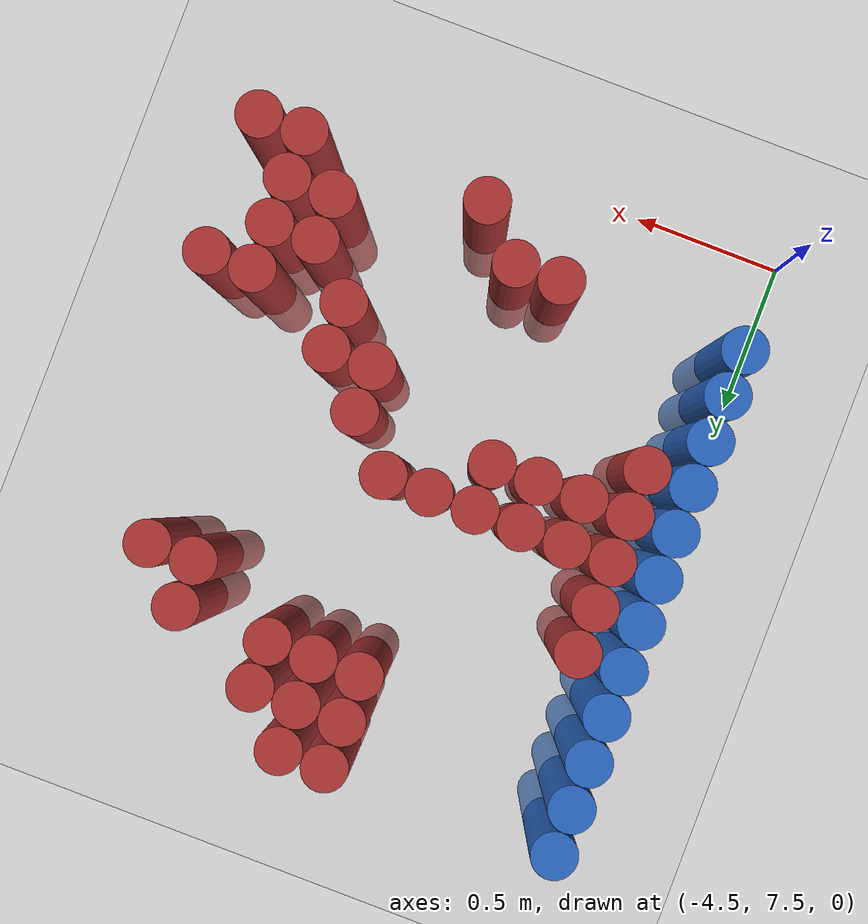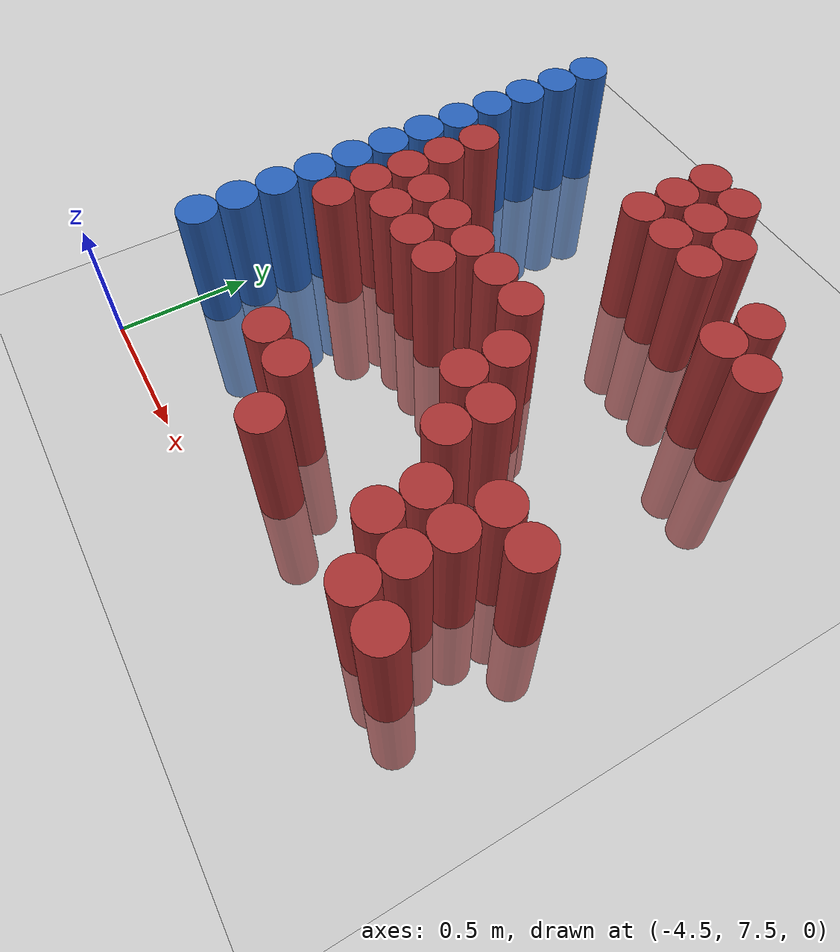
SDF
<sdf version="1.6">
 <world name="default">
  <model name="ground_plane">
   <static>1</static>
   <link name="link">
    <collision name="collision">
     <geometry><plane><normal>0 0 1</normal><size>100 100</size></plane></geometry>
     <surface><friction><ode><mu>100</mu><mu2>50</mu2></ode></friction></surface>
    </collision>
    <visual name="visual">
     <cast_shadows>0</cast_shadows>
     <geometry><plane><normal>0 0 1</normal><size>100 100</size></plane></geometry>
     <material>
      <script><uri>file://media/materials/scripts/gazebo.material</uri><name>Gazebo/Grey</name></script>
     </material>
    </visual>
   </link>
  </model>
  <model name="unit_cylinder_114">
   <static>1</static>
   <pose>-4.425000 7.875000 0.000000 0.000000 0.000000 0.000000</pose>
   <link name="link">
    <inertial>
     <mass>1</mass>
     <inertia><ixx>0.145833</ixx><ixy>0</ixy><ixz>0</ixz><iyy>0.145833</iyy><iyz>0</iyz><izz>0.125</izz></inertia>
    </inertial>
    <collision name="collision">
     <geometry><cylinder><radius>0.075000</radius><length>1</length></cylinder></geometry>
    </collision>
    <visual name="visual">
     <geometry><cylinder><radius>0.075000</radius><length>1</length></cylinder></geometry>
     <material>
      <ambient>0.152000 0.379000 0.720000 1</ambient>
      <diffuse>0.152000 0.379000 0.720000 1</diffuse>
     </material>
     <material>
      <script><name>Gazebo/Grey</name><uri>file://media/materials/scripts/gazebo.material</uri></script>
     </material>
    </visual>
   </link>
  </model>
  <model name="unit_cylinder_115">
   <static>1</static>
   <pose>-4.425000 8.025000 0.000000 0.000000 0.000000 0.000000</pose>
   <link name="link">
    <inertial>
     <mass>1</mass>
     <inertia><ixx>0.145833</ixx><ixy>0</ixy><ixz>0</ixz><iyy>0.145833</iyy><iyz>0</iyz><izz>0.125</izz></inertia>
    </inertial>
    <collision name="collision">
     <geometry><cylinder><radius>0.075000</radius><length>1</length></cylinder></geometry>
    </collision>
    <visual name="visual">
     <geometry><cylinder><radius>0.075000</radius><length>1</length></cylinder></geometry>
     <material>
      <ambient>0.152000 0.379000 0.720000 1</ambient>
      <diffuse>0.152000 0.379000 0.720000 1</diffuse>
     </material>
     <material>
      <script><name>Gazebo/Grey</name><uri>file://media/materials/scripts/gazebo.material</uri></script>
     </material>
    </visual>
   </link>
  </model>
  <model name="unit_cylinder_116">
   <static>1</static>
   <pose>-4.425000 8.175000 0.000000 0.000000 0.000000 0.000000</pose>
   <link name="link">
    <inertial>
     <mass>1</mass>
     <inertia><ixx>0.145833</ixx><ixy>0</ixy><ixz>0</ixz><iyy>0.145833</iyy><iyz>0</iyz><izz>0.125</izz></inertia>
    </inertial>
    <collision name="collision">
     <geometry><cylinder><radius>0.075000</radius><length>1</length></cylinder></geometry>
    </collision>
    <visual name="visual">
     <geometry><cylinder><radius>0.075000</radius><length>1</length></cylinder></geometry>
     <material>
      <ambient>0.152000 0.379000 0.720000 1</ambient>
      <diffuse>0.152000 0.379000 0.720000 1</diffuse>
     </material>
     <material>
      <script><name>Gazebo/Grey</name><uri>file://media/materials/scripts/gazebo.material</uri></script>
     </material>
    </visual>
   </link>
  </model>
  <model name="unit_cylinder_117">
   <static>1</static>
   <pose>-4.425000 8.325000 0.000000 0.000000 0.000000 0.000000</pose>
   <link name="link">
    <inertial>
     <mass>1</mass>
     <inertia><ixx>0.145833</ixx><ixy>0</ixy><ixz>0</ixz><iyy>0.145833</iyy><iyz>0</iyz><izz>0.125</izz></inertia>
    </inertial>
    <collision name="collision">
     <geometry><cylinder><radius>0.075000</radius><length>1</length></cylinder></geometry>
    </collision>
    <visual name="visual">
     <geometry><cylinder><radius>0.075000</radius><length>1</length></cylinder></geometry>
     <material>
      <ambient>0.152000 0.379000 0.720000 1</ambient>
      <diffuse>0.152000 0.379000 0.720000 1</diffuse>
     </material>
     <material>
      <script><name>Gazebo/Grey</name><uri>file://media/materials/scripts/gazebo.material</uri></script>
     </material>
    </visual>
   </link>
  </model>
  <model name="unit_cylinder_118">
   <static>1</static>
   <pose>-4.425000 8.475000 0.000000 0.000000 0.000000 0.000000</pose>
   <link name="link">
    <inertial>
     <mass>1</mass>
     <inertia><ixx>0.145833</ixx><ixy>0</ixy><ixz>0</ixz><iyy>0.145833</iyy><iyz>0</iyz><izz>0.125</izz></inertia>
    </inertial>
    <collision name="collision">
     <geometry><cylinder><radius>0.075000</radius><length>1</length></cylinder></geometry>
    </collision>
    <visual name="visual">
     <geometry><cylinder><radius>0.075000</radius><length>1</length></cylinder></geometry>
     <material>
      <ambient>0.152000 0.379000 0.720000 1</ambient>
      <diffuse>0.152000 0.379000 0.720000 1</diffuse>
     </material>
     <material>
      <script><name>Gazebo/Grey</name><uri>file://media/materials/scripts/gazebo.material</uri></script>
     </material>
    </visual>
   </link>
  </model>
  <model name="unit_cylinder_119">
   <static>1</static>
   <pose>-4.425000 8.625000 0.000000 0.000000 0.000000 0.000000</pose>
   <link name="link">
    <inertial>
     <mass>1</mass>
     <inertia><ixx>0.145833</ixx><ixy>0</ixy><ixz>0</ixz><iyy>0.145833</iyy><iyz>0</iyz><izz>0.125</izz></inertia>
    </inertial>
    <collision name="collision">
     <geometry><cylinder><radius>0.075000</radius><length>1</length></cylinder></geometry>
    </collision>
    <visual name="visual">
     <geometry><cylinder><radius>0.075000</radius><length>1</length></cylinder></geometry>
     <material>
      <ambient>0.152000 0.379000 0.720000 1</ambient>
      <diffuse>0.152000 0.379000 0.720000 1</diffuse>
     </material>
     <material>
      <script><name>Gazebo/Grey</name><uri>file://media/materials/scripts/gazebo.material</uri></script>
     </material>
    </visual>
   </link>
  </model>
  <model name="unit_cylinder_120">
   <static>1</static>
   <pose>-4.425000 8.775000 0.000000 0.000000 0.000000 0.000000</pose>
   <link name="link">
    <inertial>
     <mass>1</mass>
     <inertia><ixx>0.145833</ixx><ixy>0</ixy><ixz>0</ixz><iyy>0.145833</iyy><iyz>0</iyz><izz>0.125</izz></inertia>
    </inertial>
    <collision name="collision">
     <geometry><cylinder><radius>0.075000</radius><length>1</length></cylinder></geometry>
    </collision>
    <visual name="visual">
     <geometry><cylinder><radius>0.075000</radius><length>1</length></cylinder></geometry>
     <material>
      <ambient>0.152000 0.379000 0.720000 1</ambient>
      <diffuse>0.152000 0.379000 0.720000 1</diffuse>
     </material>
     <material>
      <script><name>Gazebo/Grey</name><uri>file://media/materials/scripts/gazebo.material</uri></script>
     </material>
    </visual>
   </link>
  </model>
  <model name="unit_cylinder_121">
   <static>1</static>
   <pose>-4.425000 8.925000 0.000000 0.000000 0.000000 0.000000</pose>
   <link name="link">
    <inertial>
     <mass>1</mass>
     <inertia><ixx>0.145833</ixx><ixy>0</ixy><ixz>0</ixz><iyy>0.145833</iyy><iyz>0</iyz><izz>0.125</izz></inertia>
    </inertial>
    <collision name="collision">
     <geometry><cylinder><radius>0.075000</radius><length>1</length></cylinder></geometry>
    </collision>
    <visual name="visual">
     <geometry><cylinder><radius>0.075000</radius><length>1</length></cylinder></geometry>
     <material>
      <ambient>0.152000 0.379000 0.720000 1</ambient>
      <diffuse>0.152000 0.379000 0.720000 1</diffuse>
     </material>
     <material>
      <script><name>Gazebo/Grey</name><uri>file://media/materials/scripts/gazebo.material</uri></script>
     </material>
    </visual>
   </link>
  </model>
  <model name="unit_cylinder_122">
   <static>1</static>
   <pose>-4.425000 9.075000 0.000000 0.000000 0.000000 0.000000</pose>
   <link name="link">
    <inertial>
     <mass>1</mass>
     <inertia><ixx>0.145833</ixx><ixy>0</ixy><ixz>0</ixz><iyy>0.145833</iyy><iyz>0</iyz><izz>0.125</izz></inertia>
    </inertial>
    <collision name="collision">
     <geometry><cylinder><radius>0.075000</radius><length>1</length></cylinder></geometry>
    </collision>
    <visual name="visual">
     <geometry><cylinder><radius>0.075000</radius><length>1</length></cylinder></geometry>
     <material>
      <ambient>0.152000 0.379000 0.720000 1</ambient>
      <diffuse>0.152000 0.379000 0.720000 1</diffuse>
     </material>
     <material>
      <script><name>Gazebo/Grey</name><uri>file://media/materials/scripts/gazebo.material</uri></script>
     </material>
    </visual>
   </link>
  </model>
  <model name="unit_cylinder_123">
   <static>1</static>
   <pose>-4.425000 9.225000 0.000000 0.000000 0.000000 0.000000</pose>
   <link name="link">
    <inertial>
     <mass>1</mass>
     <inertia><ixx>0.145833</ixx><ixy>0</ixy><ixz>0</ixz><iyy>0.145833</iyy><iyz>0</iyz><izz>0.125</izz></inertia>
    </inertial>
    <collision name="collision">
     <geometry><cylinder><radius>0.075000</radius><length>1</length></cylinder></geometry>
    </collision>
    <visual name="visual">
     <geometry><cylinder><radius>0.075000</radius><length>1</length></cylinder></geometry>
     <material>
      <ambient>0.152000 0.379000 0.720000 1</ambient>
      <diffuse>0.152000 0.379000 0.720000 1</diffuse>
     </material>
     <material>
      <script><name>Gazebo/Grey</name><uri>file://media/materials/scripts/gazebo.material</uri></script>
     </material>
    </visual>
   </link>
  </model>
  <model name="unit_cylinder_124">
   <static>1</static>
   <pose>-4.425000 9.375000 0.000000 0.000000 0.000000 0.000000</pose>
   <link name="link">
    <inertial>
     <mass>1</mass>
     <inertia><ixx>0.145833</ixx><ixy>0</ixy><ixz>0</ixz><iyy>0.145833</iyy><iyz>0</iyz><izz>0.125</izz></inertia>
    </inertial>
    <collision name="collision">
     <geometry><cylinder><radius>0.075000</radius><length>1</length></cylinder></geometry>
    </collision>
    <visual name="visual">
     <geometry><cylinder><radius>0.075000</radius><length>1</length></cylinder></geometry>
     <material>
      <ambient>0.152000 0.379000 0.720000 1</ambient>
      <diffuse>0.152000 0.379000 0.720000 1</diffuse>
     </material>
     <material>
      <script><name>Gazebo/Grey</name><uri>file://media/materials/scripts/gazebo.material</uri></script>
     </material>
    </visual>
   </link>
  </model>
  <model name="unit_cylinder_125">
   <static>1</static>
   <pose>-4.425000 9.525000 0.000000 0.000000 0.000000 0.000000</pose>
   <link name="link">
    <inertial>
     <mass>1</mass>
     <inertia><ixx>0.145833</ixx><ixy>0</ixy><ixz>0</ixz><iyy>0.145833</iyy><iyz>0</iyz><izz>0.125</izz></inertia>
    </inertial>
    <collision name="collision">
     <geometry><cylinder><radius>0.075000</radius><length>1</length></cylinder></geometry>
    </collision>
    <visual name="visual">
     <geometry><cylinder><radius>0.075000</radius><length>1</length></cylinder></geometry>
     <material>
      <ambient>0.152000 0.379000 0.720000 1</ambient>
      <diffuse>0.152000 0.379000 0.720000 1</diffuse>
     </material>
     <material>
      <script><name>Gazebo/Grey</name><uri>file://media/materials/scripts/gazebo.material</uri></script>
     </material>
    </visual>
   </link>
  </model>
  <model name="unit_cylinder_137">
   <static>1</static>
   <pose>-4.275000 8.325000 0.000000 0.000000 0.000000 0.000000</pose>
   <link name="link">
    <inertial>
     <mass>1</mass>
     <inertia><ixx>0.145833</ixx><ixy>0</ixy><ixz>0</ixz><iyy>0.145833</iyy><iyz>0</iyz><izz>0.125</izz></inertia>
    </inertial>
    <collision name="collision">
     <geometry><cylinder><radius>0.075000</radius><length>1</length></cylinder></geometry>
    </collision>
    <visual name="visual">
     <geometry><cylinder><radius>0.075000</radius><length>1</length></cylinder></geometry>
     <material>
      <ambient>0.648000 0.192000 0.192000 1</ambient>
      <diffuse>0.648000 0.192000 0.192000 1</diffuse>
     </material>
     <material>
      <script><name>Gazebo/Grey</name><uri>file://media/materials/scripts/gazebo.material</uri></script>
     </material>
    </visual>
   </link>
  </model>
  <model name="unit_cylinder_138">
   <static>1</static>
   <pose>-4.275000 8.475000 0.000000 0.000000 0.000000 0.000000</pose>
   <link name="link">
    <inertial>
     <mass>1</mass>
     <inertia><ixx>0.145833</ixx><ixy>0</ixy><ixz>0</ixz><iyy>0.145833</iyy><iyz>0</iyz><izz>0.125</izz></inertia>
    </inertial>
    <collision name="collision">
     <geometry><cylinder><radius>0.075000</radius><length>1</length></cylinder></geometry>
    </collision>
    <visual name="visual">
     <geometry><cylinder><radius>0.075000</radius><length>1</length></cylinder></geometry>
     <material>
      <ambient>0.648000 0.192000 0.192000 1</ambient>
      <diffuse>0.648000 0.192000 0.192000 1</diffuse>
     </material>
     <material>
      <script><name>Gazebo/Grey</name><uri>file://media/materials/scripts/gazebo.material</uri></script>
     </material>
    </visual>
   </link>
  </model>
  <model name="unit_cylinder_139">
   <static>1</static>
   <pose>-4.275000 8.625000 0.000000 0.000000 0.000000 0.000000</pose>
   <link name="link">
    <inertial>
     <mass>1</mass>
     <inertia><ixx>0.145833</ixx><ixy>0</ixy><ixz>0</ixz><iyy>0.145833</iyy><iyz>0</iyz><izz>0.125</izz></inertia>
    </inertial>
    <collision name="collision">
     <geometry><cylinder><radius>0.075000</radius><length>1</length></cylinder></geometry>
    </collision>
    <visual name="visual">
     <geometry><cylinder><radius>0.075000</radius><length>1</length></cylinder></geometry>
     <material>
      <ambient>0.648000 0.192000 0.192000 1</ambient>
      <diffuse>0.648000 0.192000 0.192000 1</diffuse>
     </material>
     <material>
      <script><name>Gazebo/Grey</name><uri>file://media/materials/scripts/gazebo.material</uri></script>
     </material>
    </visual>
   </link>
  </model>
  <model name="unit_cylinder_140">
   <static>1</static>
   <pose>-4.275000 8.775000 0.000000 0.000000 0.000000 0.000000</pose>
   <link name="link">
    <inertial>
     <mass>1</mass>
     <inertia><ixx>0.145833</ixx><ixy>0</ixy><ixz>0</ixz><iyy>0.145833</iyy><iyz>0</iyz><izz>0.125</izz></inertia>
    </inertial>
    <collision name="collision">
     <geometry><cylinder><radius>0.075000</radius><length>1</length></cylinder></geometry>
    </collision>
    <visual name="visual">
     <geometry><cylinder><radius>0.075000</radius><length>1</length></cylinder></geometry>
     <material>
      <ambient>0.648000 0.192000 0.192000 1</ambient>
      <diffuse>0.648000 0.192000 0.192000 1</diffuse>
     </material>
     <material>
      <script><name>Gazebo/Grey</name><uri>file://media/materials/scripts/gazebo.material</uri></script>
     </material>
    </visual>
   </link>
  </model>
  <model name="unit_cylinder_141">
   <static>1</static>
   <pose>-4.275000 8.925000 0.000000 0.000000 0.000000 0.000000</pose>
   <link name="link">
    <inertial>
     <mass>1</mass>
     <inertia><ixx>0.145833</ixx><ixy>0</ixy><ixz>0</ixz><iyy>0.145833</iyy><iyz>0</iyz><izz>0.125</izz></inertia>
    </inertial>
    <collision name="collision">
     <geometry><cylinder><radius>0.075000</radius><length>1</length></cylinder></geometry>
    </collision>
    <visual name="visual">
     <geometry><cylinder><radius>0.075000</radius><length>1</length></cylinder></geometry>
     <material>
      <ambient>0.648000 0.192000 0.192000 1</ambient>
      <diffuse>0.648000 0.192000 0.192000 1</diffuse>
     </material>
     <material>
      <script><name>Gazebo/Grey</name><uri>file://media/materials/scripts/gazebo.material</uri></script>
     </material>
    </visual>
   </link>
  </model>
  <model name="unit_cylinder_145">
   <static>1</static>
   <pose>-4.125000 8.475000 0.000000 0.000000 0.000000 0.000000</pose>
   <link name="link">
    <inertial>
     <mass>1</mass>
     <inertia><ixx>0.145833</ixx><ixy>0</ixy><ixz>0</ixz><iyy>0.145833</iyy><iyz>0</iyz><izz>0.125</izz></inertia>
    </inertial>
    <collision name="collision">
     <geometry><cylinder><radius>0.075000</radius><length>1</length></cylinder></geometry>
    </collision>
    <visual name="visual">
     <geometry><cylinder><radius>0.075000</radius><length>1</length></cylinder></geometry>
     <material>
      <ambient>0.648000 0.192000 0.192000 1</ambient>
      <diffuse>0.648000 0.192000 0.192000 1</diffuse>
     </material>
     <material>
      <script><name>Gazebo/Grey</name><uri>file://media/materials/scripts/gazebo.material</uri></script>
     </material>
    </visual>
   </link>
  </model>
  <model name="unit_cylinder_146">
   <static>1</static>
   <pose>-4.125000 8.625000 0.000000 0.000000 0.000000 0.000000</pose>
   <link name="link">
    <inertial>
     <mass>1</mass>
     <inertia><ixx>0.145833</ixx><ixy>0</ixy><ixz>0</ixz><iyy>0.145833</iyy><iyz>0</iyz><izz>0.125</izz></inertia>
    </inertial>
    <collision name="collision">
     <geometry><cylinder><radius>0.075000</radius><length>1</length></cylinder></geometry>
    </collision>
    <visual name="visual">
     <geometry><cylinder><radius>0.075000</radius><length>1</length></cylinder></geometry>
     <material>
      <ambient>0.648000 0.192000 0.192000 1</ambient>
      <diffuse>0.648000 0.192000 0.192000 1</diffuse>
     </material>
     <material>
      <script><name>Gazebo/Grey</name><uri>file://media/materials/scripts/gazebo.material</uri></script>
     </material>
    </visual>
   </link>
  </model>
  <model name="unit_cylinder_150">
   <static>1</static>
   <pose>-3.975000 8.475000 0.000000 0.000000 0.000000 0.000000</pose>
   <link name="link">
    <inertial>
     <mass>1</mass>
     <inertia><ixx>0.145833</ixx><ixy>0</ixy><ixz>0</ixz><iyy>0.145833</iyy><iyz>0</iyz><izz>0.125</izz></inertia>
    </inertial>
    <collision name="collision">
     <geometry><cylinder><radius>0.075000</radius><length>1</length></cylinder></geometry>
    </collision>
    <visual name="visual">
     <geometry><cylinder><radius>0.075000</radius><length>1</length></cylinder></geometry>
     <material>
      <ambient>0.648000 0.192000 0.192000 1</ambient>
      <diffuse>0.648000 0.192000 0.192000 1</diffuse>
     </material>
     <material>
      <script><name>Gazebo/Grey</name><uri>file://media/materials/scripts/gazebo.material</uri></script>
     </material>
    </visual>
   </link>
  </model>
  <model name="unit_cylinder_151">
   <static>1</static>
   <pose>-3.975000 8.625000 0.000000 0.000000 0.000000 0.000000</pose>
   <link name="link">
    <inertial>
     <mass>1</mass>
     <inertia><ixx>0.145833</ixx><ixy>0</ixy><ixz>0</ixz><iyy>0.145833</iyy><iyz>0</iyz><izz>0.125</izz></inertia>
    </inertial>
    <collision name="collision">
     <geometry><cylinder><radius>0.075000</radius><length>1</length></cylinder></geometry>
    </collision>
    <visual name="visual">
     <geometry><cylinder><radius>0.075000</radius><length>1</length></cylinder></geometry>
     <material>
      <ambient>0.648000 0.192000 0.192000 1</ambient>
      <diffuse>0.648000 0.192000 0.192000 1</diffuse>
     </material>
     <material>
      <script><name>Gazebo/Grey</name><uri>file://media/materials/scripts/gazebo.material</uri></script>
     </material>
    </visual>
   </link>
  </model>
  <model name="unit_cylinder_160">
   <static>1</static>
   <pose>-3.825000 7.875000 0.000000 0.000000 0.000000 0.000000</pose>
   <link name="link">
    <inertial>
     <mass>1</mass>
     <inertia><ixx>0.145833</ixx><ixy>0</ixy><ixz>0</ixz><iyy>0.145833</iyy><iyz>0</iyz><izz>0.125</izz></inertia>
    </inertial>
    <collision name="collision">
     <geometry><cylinder><radius>0.075000</radius><length>1</length></cylinder></geometry>
    </collision>
    <visual name="visual">
     <geometry><cylinder><radius>0.075000</radius><length>1</length></cylinder></geometry>
     <material>
      <ambient>0.648000 0.192000 0.192000 1</ambient>
      <diffuse>0.648000 0.192000 0.192000 1</diffuse>
     </material>
     <material>
      <script><name>Gazebo/Grey</name><uri>file://media/materials/scripts/gazebo.material</uri></script>
     </material>
    </visual>
   </link>
  </model>
  <model name="unit_cylinder_161">
   <static>1</static>
   <pose>-3.825000 8.475000 0.000000 0.000000 0.000000 0.000000</pose>
   <link name="link">
    <inertial>
     <mass>1</mass>
     <inertia><ixx>0.145833</ixx><ixy>0</ixy><ixz>0</ixz><iyy>0.145833</iyy><iyz>0</iyz><izz>0.125</izz></inertia>
    </inertial>
    <collision name="collision">
     <geometry><cylinder><radius>0.075000</radius><length>1</length></cylinder></geometry>
    </collision>
    <visual name="visual">
     <geometry><cylinder><radius>0.075000</radius><length>1</length></cylinder></geometry>
     <material>
      <ambient>0.648000 0.192000 0.192000 1</ambient>
      <diffuse>0.648000 0.192000 0.192000 1</diffuse>
     </material>
     <material>
      <script><name>Gazebo/Grey</name><uri>file://media/materials/scripts/gazebo.material</uri></script>
     </material>
    </visual>
   </link>
  </model>
  <model name="unit_cylinder_162">
   <static>1</static>
   <pose>-3.825000 8.625000 0.000000 0.000000 0.000000 0.000000</pose>
   <link name="link">
    <inertial>
     <mass>1</mass>
     <inertia><ixx>0.145833</ixx><ixy>0</ixy><ixz>0</ixz><iyy>0.145833</iyy><iyz>0</iyz><izz>0.125</izz></inertia>
    </inertial>
    <collision name="collision">
     <geometry><cylinder><radius>0.075000</radius><length>1</length></cylinder></geometry>
    </collision>
    <visual name="visual">
     <geometry><cylinder><radius>0.075000</radius><length>1</length></cylinder></geometry>
     <material>
      <ambient>0.648000 0.192000 0.192000 1</ambient>
      <diffuse>0.648000 0.192000 0.192000 1</diffuse>
     </material>
     <material>
      <script><name>Gazebo/Grey</name><uri>file://media/materials/scripts/gazebo.material</uri></script>
     </material>
    </visual>
   </link>
  </model>
  <model name="unit_cylinder_170">
   <static>1</static>
   <pose>-3.675000 7.875000 0.000000 0.000000 0.000000 0.000000</pose>
   <link name="link">
    <inertial>
     <mass>1</mass>
     <inertia><ixx>0.145833</ixx><ixy>0</ixy><ixz>0</ixz><iyy>0.145833</iyy><iyz>0</iyz><izz>0.125</izz></inertia>
    </inertial>
    <collision name="collision">
     <geometry><cylinder><radius>0.075000</radius><length>1</length></cylinder></geometry>
    </collision>
    <visual name="visual">
     <geometry><cylinder><radius>0.075000</radius><length>1</length></cylinder></geometry>
     <material>
      <ambient>0.648000 0.192000 0.192000 1</ambient>
      <diffuse>0.648000 0.192000 0.192000 1</diffuse>
     </material>
     <material>
      <script><name>Gazebo/Grey</name><uri>file://media/materials/scripts/gazebo.material</uri></script>
     </material>
    </visual>
   </link>
  </model>
  <model name="unit_cylinder_171">
   <static>1</static>
   <pose>-3.675000 8.625000 0.000000 0.000000 0.000000 0.000000</pose>
   <link name="link">
    <inertial>
     <mass>1</mass>
     <inertia><ixx>0.145833</ixx><ixy>0</ixy><ixz>0</ixz><iyy>0.145833</iyy><iyz>0</iyz><izz>0.125</izz></inertia>
    </inertial>
    <collision name="collision">
     <geometry><cylinder><radius>0.075000</radius><length>1</length></cylinder></geometry>
    </collision>
    <visual name="visual">
     <geometry><cylinder><radius>0.075000</radius><length>1</length></cylinder></geometry>
     <material>
      <ambient>0.648000 0.192000 0.192000 1</ambient>
      <diffuse>0.648000 0.192000 0.192000 1</diffuse>
     </material>
     <material>
      <script><name>Gazebo/Grey</name><uri>file://media/materials/scripts/gazebo.material</uri></script>
     </material>
    </visual>
   </link>
  </model>
  <model name="unit_cylinder_172">
   <static>1</static>
   <pose>-3.675000 9.225000 0.000000 0.000000 0.000000 0.000000</pose>
   <link name="link">
    <inertial>
     <mass>1</mass>
     <inertia><ixx>0.145833</ixx><ixy>0</ixy><ixz>0</ixz><iyy>0.145833</iyy><iyz>0</iyz><izz>0.125</izz></inertia>
    </inertial>
    <collision name="collision">
     <geometry><cylinder><radius>0.075000</radius><length>1</length></cylinder></geometry>
    </collision>
    <visual name="visual">
     <geometry><cylinder><radius>0.075000</radius><length>1</length></cylinder></geometry>
     <material>
      <ambient>0.648000 0.192000 0.192000 1</ambient>
      <diffuse>0.648000 0.192000 0.192000 1</diffuse>
     </material>
     <material>
      <script><name>Gazebo/Grey</name><uri>file://media/materials/scripts/gazebo.material</uri></script>
     </material>
    </visual>
   </link>
  </model>
  <model name="unit_cylinder_173">
   <static>1</static>
   <pose>-3.675000 9.375000 0.000000 0.000000 0.000000 0.000000</pose>
   <link name="link">
    <inertial>
     <mass>1</mass>
     <inertia><ixx>0.145833</ixx><ixy>0</ixy><ixz>0</ixz><iyy>0.145833</iyy><iyz>0</iyz><izz>0.125</izz></inertia>
    </inertial>
    <collision name="collision">
     <geometry><cylinder><radius>0.075000</radius><length>1</length></cylinder></geometry>
    </collision>
    <visual name="visual">
     <geometry><cylinder><radius>0.075000</radius><length>1</length></cylinder></geometry>
     <material>
      <ambient>0.648000 0.192000 0.192000 1</ambient>
      <diffuse>0.648000 0.192000 0.192000 1</diffuse>
     </material>
     <material>
      <script><name>Gazebo/Grey</name><uri>file://media/materials/scripts/gazebo.material</uri></script>
     </material>
    </visual>
   </link>
  </model>
  <model name="unit_cylinder_174">
   <static>1</static>
   <pose>-3.675000 9.525000 0.000000 0.000000 0.000000 0.000000</pose>
   <link name="link">
    <inertial>
     <mass>1</mass>
     <inertia><ixx>0.145833</ixx><ixy>0</ixy><ixz>0</ixz><iyy>0.145833</iyy><iyz>0</iyz><izz>0.125</izz></inertia>
    </inertial>
    <collision name="collision">
     <geometry><cylinder><radius>0.075000</radius><length>1</length></cylinder></geometry>
    </collision>
    <visual name="visual">
     <geometry><cylinder><radius>0.075000</radius><length>1</length></cylinder></geometry>
     <material>
      <ambient>0.648000 0.192000 0.192000 1</ambient>
      <diffuse>0.648000 0.192000 0.192000 1</diffuse>
     </material>
     <material>
      <script><name>Gazebo/Grey</name><uri>file://media/materials/scripts/gazebo.material</uri></script>
     </material>
    </visual>
   </link>
  </model>
  <model name="unit_cylinder_181">
   <static>1</static>
   <pose>-3.525000 7.725000 0.000000 0.000000 0.000000 0.000000</pose>
   <link name="link">
    <inertial>
     <mass>1</mass>
     <inertia><ixx>0.145833</ixx><ixy>0</ixy><ixz>0</ixz><iyy>0.145833</iyy><iyz>0</iyz><izz>0.125</izz></inertia>
    </inertial>
    <collision name="collision">
     <geometry><cylinder><radius>0.075000</radius><length>1</length></cylinder></geometry>
    </collision>
    <visual name="visual">
     <geometry><cylinder><radius>0.075000</radius><length>1</length></cylinder></geometry>
     <material>
      <ambient>0.648000 0.192000 0.192000 1</ambient>
      <diffuse>0.648000 0.192000 0.192000 1</diffuse>
     </material>
     <material>
      <script><name>Gazebo/Grey</name><uri>file://media/materials/scripts/gazebo.material</uri></script>
     </material>
    </visual>
   </link>
  </model>
  <model name="unit_cylinder_182">
   <static>1</static>
   <pose>-3.525000 8.625000 0.000000 0.000000 0.000000 0.000000</pose>
   <link name="link">
    <inertial>
     <mass>1</mass>
     <inertia><ixx>0.145833</ixx><ixy>0</ixy><ixz>0</ixz><iyy>0.145833</iyy><iyz>0</iyz><izz>0.125</izz></inertia>
    </inertial>
    <collision name="collision">
     <geometry><cylinder><radius>0.075000</radius><length>1</length></cylinder></geometry>
    </collision>
    <visual name="visual">
     <geometry><cylinder><radius>0.075000</radius><length>1</length></cylinder></geometry>
     <material>
      <ambient>0.648000 0.192000 0.192000 1</ambient>
      <diffuse>0.648000 0.192000 0.192000 1</diffuse>
     </material>
     <material>
      <script><name>Gazebo/Grey</name><uri>file://media/materials/scripts/gazebo.material</uri></script>
     </material>
    </visual>
   </link>
  </model>
  <model name="unit_cylinder_183">
   <static>1</static>
   <pose>-3.525000 9.225000 0.000000 0.000000 0.000000 0.000000</pose>
   <link name="link">
    <inertial>
     <mass>1</mass>
     <inertia><ixx>0.145833</ixx><ixy>0</ixy><ixz>0</ixz><iyy>0.145833</iyy><iyz>0</iyz><izz>0.125</izz></inertia>
    </inertial>
    <collision name="collision">
     <geometry><cylinder><radius>0.075000</radius><length>1</length></cylinder></geometry>
    </collision>
    <visual name="visual">
     <geometry><cylinder><radius>0.075000</radius><length>1</length></cylinder></geometry>
     <material>
      <ambient>0.648000 0.192000 0.192000 1</ambient>
      <diffuse>0.648000 0.192000 0.192000 1</diffuse>
     </material>
     <material>
      <script><name>Gazebo/Grey</name><uri>file://media/materials/scripts/gazebo.material</uri></script>
     </material>
    </visual>
   </link>
  </model>
  <model name="unit_cylinder_184">
   <static>1</static>
   <pose>-3.525000 9.375000 0.000000 0.000000 0.000000 0.000000</pose>
   <link name="link">
    <inertial>
     <mass>1</mass>
     <inertia><ixx>0.145833</ixx><ixy>0</ixy><ixz>0</ixz><iyy>0.145833</iyy><iyz>0</iyz><izz>0.125</izz></inertia>
    </inertial>
    <collision name="collision">
     <geometry><cylinder><radius>0.075000</radius><length>1</length></cylinder></geometry>
    </collision>
    <visual name="visual">
     <geometry><cylinder><radius>0.075000</radius><length>1</length></cylinder></geometry>
     <material>
      <ambient>0.648000 0.192000 0.192000 1</ambient>
      <diffuse>0.648000 0.192000 0.192000 1</diffuse>
     </material>
     <material>
      <script><name>Gazebo/Grey</name><uri>file://media/materials/scripts/gazebo.material</uri></script>
     </material>
    </visual>
   </link>
  </model>
  <model name="unit_cylinder_185">
   <static>1</static>
   <pose>-3.525000 9.525000 0.000000 0.000000 0.000000 0.000000</pose>
   <link name="link">
    <inertial>
     <mass>1</mass>
     <inertia><ixx>0.145833</ixx><ixy>0</ixy><ixz>0</ixz><iyy>0.145833</iyy><iyz>0</iyz><izz>0.125</izz></inertia>
    </inertial>
    <collision name="collision">
     <geometry><cylinder><radius>0.075000</radius><length>1</length></cylinder></geometry>
    </collision>
    <visual name="visual">
     <geometry><cylinder><radius>0.075000</radius><length>1</length></cylinder></geometry>
     <material>
      <ambient>0.648000 0.192000 0.192000 1</ambient>
      <diffuse>0.648000 0.192000 0.192000 1</diffuse>
     </material>
     <material>
      <script><name>Gazebo/Grey</name><uri>file://media/materials/scripts/gazebo.material</uri></script>
     </material>
    </visual>
   </link>
  </model>
  <model name="unit_cylinder_196">
   <static>1</static>
   <pose>-3.375000 8.325000 0.000000 0.000000 0.000000 0.000000</pose>
   <link name="link">
    <inertial>
     <mass>1</mass>
     <inertia><ixx>0.145833</ixx><ixy>0</ixy><ixz>0</ixz><iyy>0.145833</iyy><iyz>0</iyz><izz>0.125</izz></inertia>
    </inertial>
    <collision name="collision">
     <geometry><cylinder><radius>0.075000</radius><length>1</length></cylinder></geometry>
    </collision>
    <visual name="visual">
     <geometry><cylinder><radius>0.075000</radius><length>1</length></cylinder></geometry>
     <material>
      <ambient>0.648000 0.192000 0.192000 1</ambient>
      <diffuse>0.648000 0.192000 0.192000 1</diffuse>
     </material>
     <material>
      <script><name>Gazebo/Grey</name><uri>file://media/materials/scripts/gazebo.material</uri></script>
     </material>
    </visual>
   </link>
  </model>
  <model name="unit_cylinder_197">
   <static>1</static>
   <pose>-3.375000 8.475000 0.000000 0.000000 0.000000 0.000000</pose>
   <link name="link">
    <inertial>
     <mass>1</mass>
     <inertia><ixx>0.145833</ixx><ixy>0</ixy><ixz>0</ixz><iyy>0.145833</iyy><iyz>0</iyz><izz>0.125</izz></inertia>
    </inertial>
    <collision name="collision">
     <geometry><cylinder><radius>0.075000</radius><length>1</length></cylinder></geometry>
    </collision>
    <visual name="visual">
     <geometry><cylinder><radius>0.075000</radius><length>1</length></cylinder></geometry>
     <material>
      <ambient>0.648000 0.192000 0.192000 1</ambient>
      <diffuse>0.648000 0.192000 0.192000 1</diffuse>
     </material>
     <material>
      <script><name>Gazebo/Grey</name><uri>file://media/materials/scripts/gazebo.material</uri></script>
     </material>
    </visual>
   </link>
  </model>
  <model name="unit_cylinder_198">
   <static>1</static>
   <pose>-3.375000 9.225000 0.000000 0.000000 0.000000 0.000000</pose>
   <link name="link">
    <inertial>
     <mass>1</mass>
     <inertia><ixx>0.145833</ixx><ixy>0</ixy><ixz>0</ixz><iyy>0.145833</iyy><iyz>0</iyz><izz>0.125</izz></inertia>
    </inertial>
    <collision name="collision">
     <geometry><cylinder><radius>0.075000</radius><length>1</length></cylinder></geometry>
    </collision>
    <visual name="visual">
     <geometry><cylinder><radius>0.075000</radius><length>1</length></cylinder></geometry>
     <material>
      <ambient>0.648000 0.192000 0.192000 1</ambient>
      <diffuse>0.648000 0.192000 0.192000 1</diffuse>
     </material>
     <material>
      <script><name>Gazebo/Grey</name><uri>file://media/materials/scripts/gazebo.material</uri></script>
     </material>
    </visual>
   </link>
  </model>
  <model name="unit_cylinder_199">
   <static>1</static>
   <pose>-3.375000 9.375000 0.000000 0.000000 0.000000 0.000000</pose>
   <link name="link">
    <inertial>
     <mass>1</mass>
     <inertia><ixx>0.145833</ixx><ixy>0</ixy><ixz>0</ixz><iyy>0.145833</iyy><iyz>0</iyz><izz>0.125</izz></inertia>
    </inertial>
    <collision name="collision">
     <geometry><cylinder><radius>0.075000</radius><length>1</length></cylinder></geometry>
    </collision>
    <visual name="visual">
     <geometry><cylinder><radius>0.075000</radius><length>1</length></cylinder></geometry>
     <material>
      <ambient>0.648000 0.192000 0.192000 1</ambient>
      <diffuse>0.648000 0.192000 0.192000 1</diffuse>
     </material>
     <material>
      <script><name>Gazebo/Grey</name><uri>file://media/materials/scripts/gazebo.material</uri></script>
     </material>
    </visual>
   </link>
  </model>
  <model name="unit_cylinder_204">
   <static>1</static>
   <pose>-3.225000 8.175000 0.000000 0.000000 0.000000 0.000000</pose>
   <link name="link">
    <inertial>
     <mass>1</mass>
     <inertia><ixx>0.145833</ixx><ixy>0</ixy><ixz>0</ixz><iyy>0.145833</iyy><iyz>0</iyz><izz>0.125</izz></inertia>
    </inertial>
    <collision name="collision">
     <geometry><cylinder><radius>0.075000</radius><length>1</length></cylinder></geometry>
    </collision>
    <visual name="visual">
     <geometry><cylinder><radius>0.075000</radius><length>1</length></cylinder></geometry>
     <material>
      <ambient>0.648000 0.192000 0.192000 1</ambient>
      <diffuse>0.648000 0.192000 0.192000 1</diffuse>
     </material>
     <material>
      <script><name>Gazebo/Grey</name><uri>file://media/materials/scripts/gazebo.material</uri></script>
     </material>
    </visual>
   </link>
  </model>
  <model name="unit_cylinder_205">
   <static>1</static>
   <pose>-3.225000 8.325000 0.000000 0.000000 0.000000 0.000000</pose>
   <link name="link">
    <inertial>
     <mass>1</mass>
     <inertia><ixx>0.145833</ixx><ixy>0</ixy><ixz>0</ixz><iyy>0.145833</iyy><iyz>0</iyz><izz>0.125</izz></inertia>
    </inertial>
    <collision name="collision">
     <geometry><cylinder><radius>0.075000</radius><length>1</length></cylinder></geometry>
    </collision>
    <visual name="visual">
     <geometry><cylinder><radius>0.075000</radius><length>1</length></cylinder></geometry>
     <material>
      <ambient>0.648000 0.192000 0.192000 1</ambient>
      <diffuse>0.648000 0.192000 0.192000 1</diffuse>
     </material>
     <material>
      <script><name>Gazebo/Grey</name><uri>file://media/materials/scripts/gazebo.material</uri></script>
     </material>
    </visual>
   </link>
  </model>
  <model name="unit_cylinder_211">
   <static>1</static>
   <pose>-3.075000 7.875000 0.000000 0.000000 0.000000 0.000000</pose>
   <link name="link">
    <inertial>
     <mass>1</mass>
     <inertia><ixx>0.145833</ixx><ixy>0</ixy><ixz>0</ixz><iyy>0.145833</iyy><iyz>0</iyz><izz>0.125</izz></inertia>
    </inertial>
    <collision name="collision">
     <geometry><cylinder><radius>0.075000</radius><length>1</length></cylinder></geometry>
    </collision>
    <visual name="visual">
     <geometry><cylinder><radius>0.075000</radius><length>1</length></cylinder></geometry>
     <material>
      <ambient>0.648000 0.192000 0.192000 1</ambient>
      <diffuse>0.648000 0.192000 0.192000 1</diffuse>
     </material>
     <material>
      <script><name>Gazebo/Grey</name><uri>file://media/materials/scripts/gazebo.material</uri></script>
     </material>
    </visual>
   </link>
  </model>
  <model name="unit_cylinder_212">
   <static>1</static>
   <pose>-3.075000 8.025000 0.000000 0.000000 0.000000 0.000000</pose>
   <link name="link">
    <inertial>
     <mass>1</mass>
     <inertia><ixx>0.145833</ixx><ixy>0</ixy><ixz>0</ixz><iyy>0.145833</iyy><iyz>0</iyz><izz>0.125</izz></inertia>
    </inertial>
    <collision name="collision">
     <geometry><cylinder><radius>0.075000</radius><length>1</length></cylinder></geometry>
    </collision>
    <visual name="visual">
     <geometry><cylinder><radius>0.075000</radius><length>1</length></cylinder></geometry>
     <material>
      <ambient>0.648000 0.192000 0.192000 1</ambient>
      <diffuse>0.648000 0.192000 0.192000 1</diffuse>
     </material>
     <material>
      <script><name>Gazebo/Grey</name><uri>file://media/materials/scripts/gazebo.material</uri></script>
     </material>
    </visual>
   </link>
  </model>
  <model name="unit_cylinder_213">
   <static>1</static>
   <pose>-3.075000 9.075000 0.000000 0.000000 0.000000 0.000000</pose>
   <link name="link">
    <inertial>
     <mass>1</mass>
     <inertia><ixx>0.145833</ixx><ixy>0</ixy><ixz>0</ixz><iyy>0.145833</iyy><iyz>0</iyz><izz>0.125</izz></inertia>
    </inertial>
    <collision name="collision">
     <geometry><cylinder><radius>0.075000</radius><length>1</length></cylinder></geometry>
    </collision>
    <visual name="visual">
     <geometry><cylinder><radius>0.075000</radius><length>1</length></cylinder></geometry>
     <material>
      <ambient>0.648000 0.192000 0.192000 1</ambient>
      <diffuse>0.648000 0.192000 0.192000 1</diffuse>
     </material>
     <material>
      <script><name>Gazebo/Grey</name><uri>file://media/materials/scripts/gazebo.material</uri></script>
     </material>
    </visual>
   </link>
  </model>
  <model name="unit_cylinder_214">
   <static>1</static>
   <pose>-3.075000 9.225000 0.000000 0.000000 0.000000 0.000000</pose>
   <link name="link">
    <inertial>
     <mass>1</mass>
     <inertia><ixx>0.145833</ixx><ixy>0</ixy><ixz>0</ixz><iyy>0.145833</iyy><iyz>0</iyz><izz>0.125</izz></inertia>
    </inertial>
    <collision name="collision">
     <geometry><cylinder><radius>0.075000</radius><length>1</length></cylinder></geometry>
    </collision>
    <visual name="visual">
     <geometry><cylinder><radius>0.075000</radius><length>1</length></cylinder></geometry>
     <material>
      <ambient>0.648000 0.192000 0.192000 1</ambient>
      <diffuse>0.648000 0.192000 0.192000 1</diffuse>
     </material>
     <material>
      <script><name>Gazebo/Grey</name><uri>file://media/materials/scripts/gazebo.material</uri></script>
     </material>
    </visual>
   </link>
  </model>
  <model name="unit_cylinder_217">
   <static>1</static>
   <pose>-2.925000 7.725000 0.000000 0.000000 0.000000 0.000000</pose>
   <link name="link">
    <inertial>
     <mass>1</mass>
     <inertia><ixx>0.145833</ixx><ixy>0</ixy><ixz>0</ixz><iyy>0.145833</iyy><iyz>0</iyz><izz>0.125</izz></inertia>
    </inertial>
    <collision name="collision">
     <geometry><cylinder><radius>0.075000</radius><length>1</length></cylinder></geometry>
    </collision>
    <visual name="visual">
     <geometry><cylinder><radius>0.075000</radius><length>1</length></cylinder></geometry>
     <material>
      <ambient>0.648000 0.192000 0.192000 1</ambient>
      <diffuse>0.648000 0.192000 0.192000 1</diffuse>
     </material>
     <material>
      <script><name>Gazebo/Grey</name><uri>file://media/materials/scripts/gazebo.material</uri></script>
     </material>
    </visual>
   </link>
  </model>
  <model name="unit_cylinder_218">
   <static>1</static>
   <pose>-2.925000 7.875000 0.000000 0.000000 0.000000 0.000000</pose>
   <link name="link">
    <inertial>
     <mass>1</mass>
     <inertia><ixx>0.145833</ixx><ixy>0</ixy><ixz>0</ixz><iyy>0.145833</iyy><iyz>0</iyz><izz>0.125</izz></inertia>
    </inertial>
    <collision name="collision">
     <geometry><cylinder><radius>0.075000</radius><length>1</length></cylinder></geometry>
    </collision>
    <visual name="visual">
     <geometry><cylinder><radius>0.075000</radius><length>1</length></cylinder></geometry>
     <material>
      <ambient>0.648000 0.192000 0.192000 1</ambient>
      <diffuse>0.648000 0.192000 0.192000 1</diffuse>
     </material>
     <material>
      <script><name>Gazebo/Grey</name><uri>file://media/materials/scripts/gazebo.material</uri></script>
     </material>
    </visual>
   </link>
  </model>
  <model name="unit_cylinder_219">
   <static>1</static>
   <pose>-2.925000 8.025000 0.000000 0.000000 0.000000 0.000000</pose>
   <link name="link">
    <inertial>
     <mass>1</mass>
     <inertia><ixx>0.145833</ixx><ixy>0</ixy><ixz>0</ixz><iyy>0.145833</iyy><iyz>0</iyz><izz>0.125</izz></inertia>
    </inertial>
    <collision name="collision">
     <geometry><cylinder><radius>0.075000</radius><length>1</length></cylinder></geometry>
    </collision>
    <visual name="visual">
     <geometry><cylinder><radius>0.075000</radius><length>1</length></cylinder></geometry>
     <material>
      <ambient>0.648000 0.192000 0.192000 1</ambient>
      <diffuse>0.648000 0.192000 0.192000 1</diffuse>
     </material>
     <material>
      <script><name>Gazebo/Grey</name><uri>file://media/materials/scripts/gazebo.material</uri></script>
     </material>
    </visual>
   </link>
  </model>
  <model name="unit_cylinder_220">
   <static>1</static>
   <pose>-2.925000 8.175000 0.000000 0.000000 0.000000 0.000000</pose>
   <link name="link">
    <inertial>
     <mass>1</mass>
     <inertia><ixx>0.145833</ixx><ixy>0</ixy><ixz>0</ixz><iyy>0.145833</iyy><iyz>0</iyz><izz>0.125</izz></inertia>
    </inertial>
    <collision name="collision">
     <geometry><cylinder><radius>0.075000</radius><length>1</length></cylinder></geometry>
    </collision>
    <visual name="visual">
     <geometry><cylinder><radius>0.075000</radius><length>1</length></cylinder></geometry>
     <material>
      <ambient>0.648000 0.192000 0.192000 1</ambient>
      <diffuse>0.648000 0.192000 0.192000 1</diffuse>
     </material>
     <material>
      <script><name>Gazebo/Grey</name><uri>file://media/materials/scripts/gazebo.material</uri></script>
     </material>
    </visual>
   </link>
  </model>
  <model name="unit_cylinder_221">
   <static>1</static>
   <pose>-2.925000 9.075000 0.000000 0.000000 0.000000 0.000000</pose>
   <link name="link">
    <inertial>
     <mass>1</mass>
     <inertia><ixx>0.145833</ixx><ixy>0</ixy><ixz>0</ixz><iyy>0.145833</iyy><iyz>0</iyz><izz>0.125</izz></inertia>
    </inertial>
    <collision name="collision">
     <geometry><cylinder><radius>0.075000</radius><length>1</length></cylinder></geometry>
    </collision>
    <visual name="visual">
     <geometry><cylinder><radius>0.075000</radius><length>1</length></cylinder></geometry>
     <material>
      <ambient>0.648000 0.192000 0.192000 1</ambient>
      <diffuse>0.648000 0.192000 0.192000 1</diffuse>
     </material>
     <material>
      <script><name>Gazebo/Grey</name><uri>file://media/materials/scripts/gazebo.material</uri></script>
     </material>
    </visual>
   </link>
  </model>
  <model name="unit_cylinder_224">
   <static>1</static>
   <pose>-2.775000 7.725000 0.000000 0.000000 0.000000 0.000000</pose>
   <link name="link">
    <inertial>
     <mass>1</mass>
     <inertia><ixx>0.145833</ixx><ixy>0</ixy><ixz>0</ixz><iyy>0.145833</iyy><iyz>0</iyz><izz>0.125</izz></inertia>
    </inertial>
    <collision name="collision">
     <geometry><cylinder><radius>0.075000</radius><length>1</length></cylinder></geometry>
    </collision>
    <visual name="visual">
     <geometry><cylinder><radius>0.075000</radius><length>1</length></cylinder></geometry>
     <material>
      <ambient>0.648000 0.192000 0.192000 1</ambient>
      <diffuse>0.648000 0.192000 0.192000 1</diffuse>
     </material>
     <material>
      <script><name>Gazebo/Grey</name><uri>file://media/materials/scripts/gazebo.material</uri></script>
     </material>
    </visual>
   </link>
  </model>
  <model name="unit_cylinder_225">
   <static>1</static>
   <pose>-2.775000 8.175000 0.000000 0.000000 0.000000 0.000000</pose>
   <link name="link">
    <inertial>
     <mass>1</mass>
     <inertia><ixx>0.145833</ixx><ixy>0</ixy><ixz>0</ixz><iyy>0.145833</iyy><iyz>0</iyz><izz>0.125</izz></inertia>
    </inertial>
    <collision name="collision">
     <geometry><cylinder><radius>0.075000</radius><length>1</length></cylinder></geometry>
    </collision>
    <visual name="visual">
     <geometry><cylinder><radius>0.075000</radius><length>1</length></cylinder></geometry>
     <material>
      <ambient>0.648000 0.192000 0.192000 1</ambient>
      <diffuse>0.648000 0.192000 0.192000 1</diffuse>
     </material>
     <material>
      <script><name>Gazebo/Grey</name><uri>file://media/materials/scripts/gazebo.material</uri></script>
     </material>
    </visual>
   </link>
  </model>
 </world>
</sdf>
